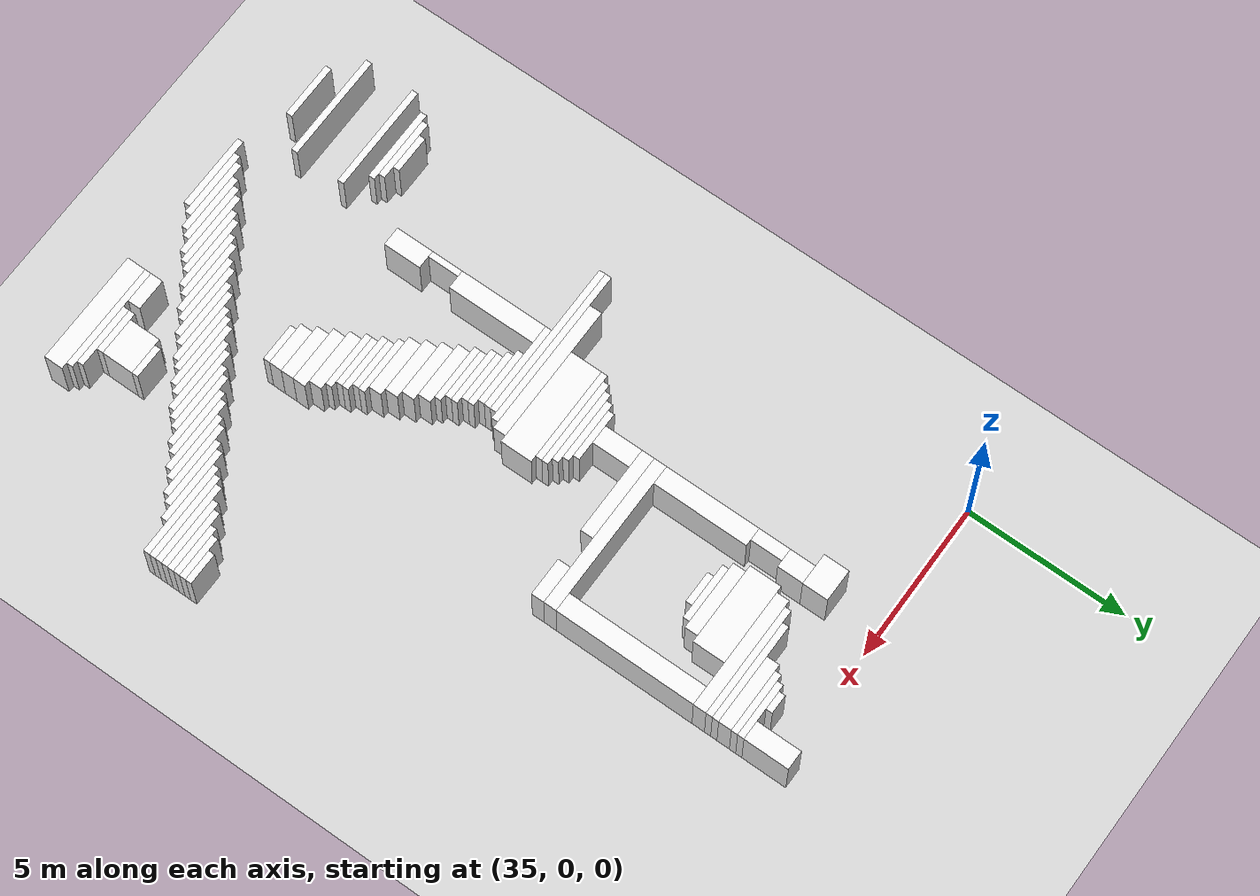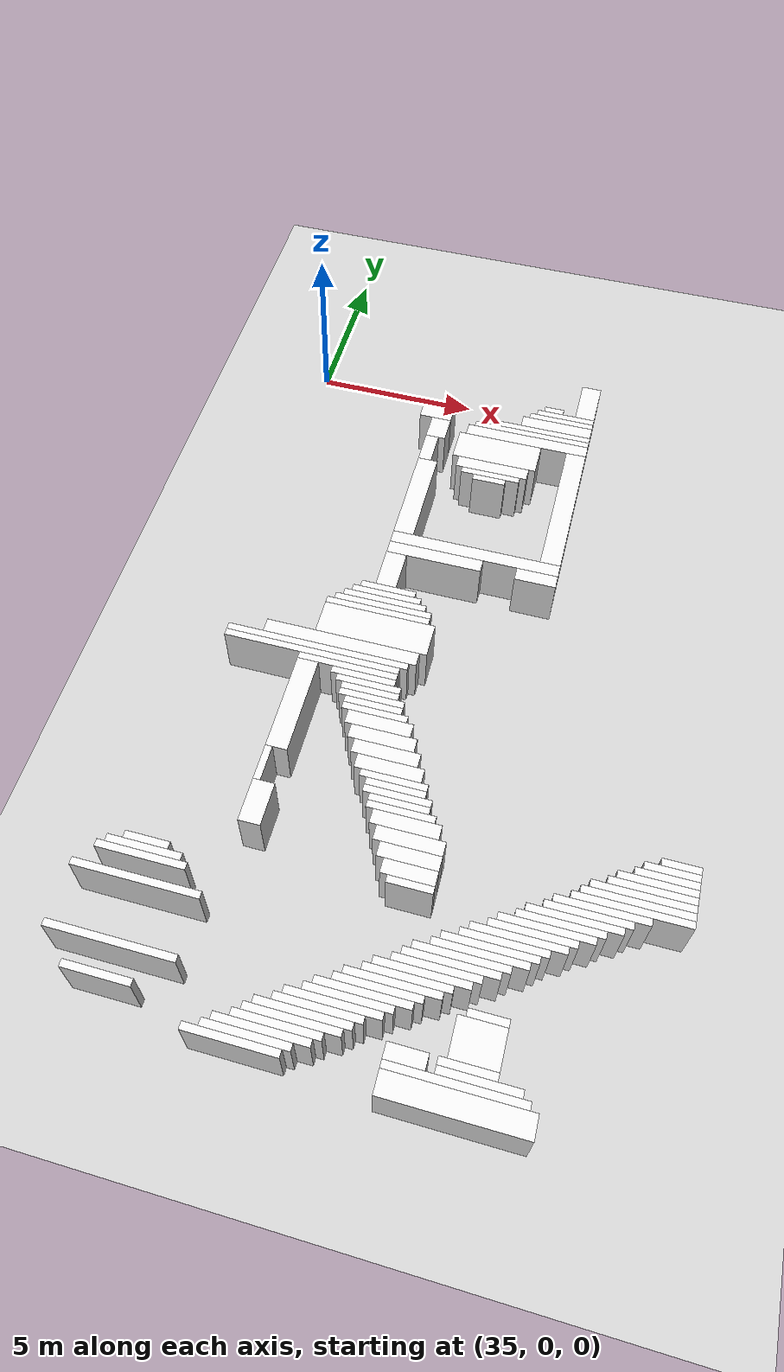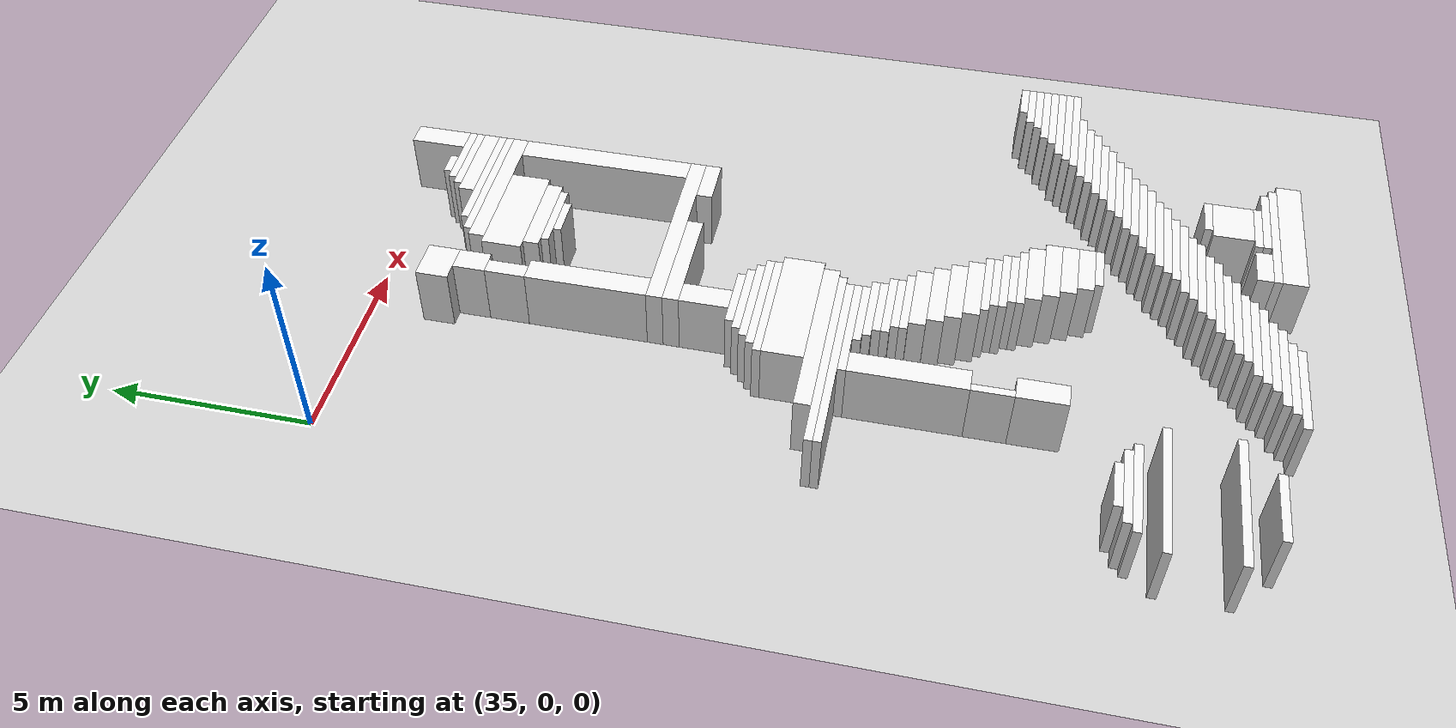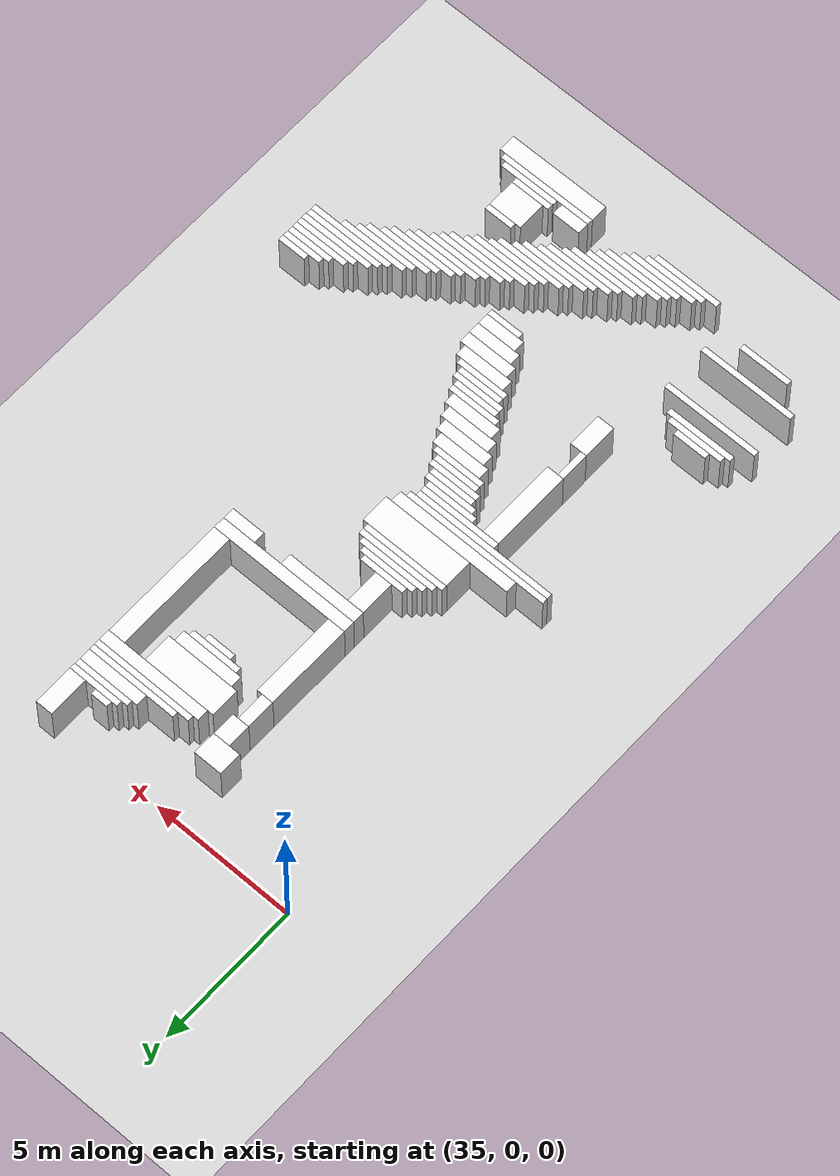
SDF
<sdf version="1.7">
 <world name="default">
  <model name="ground_plane">
   <static>1</static>
   <link name="link">
    <collision name="collision">
     <geometry><plane><normal>0 0 1</normal><size>120 120</size></plane></geometry>
    </collision>
    <visual name="visual">
     <geometry><plane><normal>0 0 1</normal><size>120 120</size></plane></geometry>
     <material>
      <script><uri>file://media/materials/scripts/gazebo.material</uri><name>Gazebo/Grey</name></script>
     </material>
    </visual>
   </link>
  </model>
  <model name="random_complex_03_model">
   <static>1</static>
   <link name="obs_1662">
    <pose>43.9000 -0.3000 0.8000 0 0 0</pose>
    <collision name="obs_1662_col"><geometry><box><size>0.6000 1.4000 1.6000</size></box></geometry></collision>
    <visual name="obs_1662_vis">
     <geometry><box><size>0.6000 1.4000 1.6000</size></box></geometry>
     <material>
      <script><uri>file://media/materials/scripts/gazebo.material</uri><name>Gazebo/White</name></script>
     </material>
    </visual>
   </link>
   <link name="obs_1672">
    <pose>42.9000 -0.9000 0.8000 0 0 0</pose>
    <collision name="obs_1672_col"><geometry><box><size>0.6000 0.2000 1.6000</size></box></geometry></collision>
    <visual name="obs_1672_vis">
     <geometry><box><size>0.6000 0.2000 1.6000</size></box></geometry>
     <material>
      <script><uri>file://media/materials/scripts/gazebo.material</uri><name>Gazebo/White</name></script>
     </material>
    </visual>
   </link>
   <link name="obs_1681">
    <pose>43.3000 -1.1000 0.8000 0 0 0</pose>
    <collision name="obs_1681_col"><geometry><box><size>1.8000 0.2000 1.6000</size></box></geometry></collision>
    <visual name="obs_1681_vis">
     <geometry><box><size>1.8000 0.2000 1.6000</size></box></geometry>
     <material>
      <script><uri>file://media/materials/scripts/gazebo.material</uri><name>Gazebo/White</name></script>
     </material>
    </visual>
   </link>
   <link name="obs_1692">
    <pose>43.2000 -1.3000 0.8000 0 0 0</pose>
    <collision name="obs_1692_col"><geometry><box><size>2.0000 0.2000 1.6000</size></box></geometry></collision>
    <visual name="obs_1692_vis">
     <geometry><box><size>2.0000 0.2000 1.6000</size></box></geometry>
     <material>
      <script><uri>file://media/materials/scripts/gazebo.material</uri><name>Gazebo/White</name></script>
     </material>
    </visual>
   </link>
   <link name="obs_1707">
    <pose>43.1000 -1.6000 0.8000 0 0 0</pose>
    <collision name="obs_1707_col"><geometry><box><size>2.2000 0.4000 1.6000</size></box></geometry></collision>
    <visual name="obs_1707_vis">
     <geometry><box><size>2.2000 0.4000 1.6000</size></box></geometry>
     <material>
      <script><uri>file://media/materials/scripts/gazebo.material</uri><name>Gazebo/White</name></script>
     </material>
    </visual>
   </link>
   <link name="obs_1720">
    <pose>42.6000 -1.9000 0.8000 0 0 0</pose>
    <collision name="obs_1720_col"><geometry><box><size>3.2000 0.2000 1.6000</size></box></geometry></collision>
    <visual name="obs_1720_vis">
     <geometry><box><size>3.2000 0.2000 1.6000</size></box></geometry>
     <material>
      <script><uri>file://media/materials/scripts/gazebo.material</uri><name>Gazebo/White</name></script>
     </material>
    </visual>
   </link>
   <link name="obs_1721">
    <pose>39.3000 -1.8000 0.8000 0 0 0</pose>
    <collision name="obs_1721_col"><geometry><box><size>1.0000 0.8000 1.6000</size></box></geometry></collision>
    <visual name="obs_1721_vis">
     <geometry><box><size>1.0000 0.8000 1.6000</size></box></geometry>
     <material>
      <script><uri>file://media/materials/scripts/gazebo.material</uri><name>Gazebo/White</name></script>
     </material>
    </visual>
   </link>
   <link name="obs_1730">
    <pose>42.4000 -2.1000 0.8000 0 0 0</pose>
    <collision name="obs_1730_col"><geometry><box><size>3.6000 0.2000 1.6000</size></box></geometry></collision>
    <visual name="obs_1730_vis">
     <geometry><box><size>3.6000 0.2000 1.6000</size></box></geometry>
     <material>
      <script><uri>file://media/materials/scripts/gazebo.material</uri><name>Gazebo/White</name></script>
     </material>
    </visual>
   </link>
   <link name="obs_1742">
    <pose>42.3000 -2.4000 0.8000 0 0 0</pose>
    <collision name="obs_1742_col"><geometry><box><size>3.8000 0.4000 1.6000</size></box></geometry></collision>
    <visual name="obs_1742_vis">
     <geometry><box><size>3.8000 0.4000 1.6000</size></box></geometry>
     <material>
      <script><uri>file://media/materials/scripts/gazebo.material</uri><name>Gazebo/White</name></script>
     </material>
    </visual>
   </link>
   <link name="obs_1756">
    <pose>39.5000 -2.6000 0.8000 0 0 0</pose>
    <collision name="obs_1756_col"><geometry><box><size>0.6000 0.8000 1.6000</size></box></geometry></collision>
    <visual name="obs_1756_vis">
     <geometry><box><size>0.6000 0.8000 1.6000</size></box></geometry>
     <material>
      <script><uri>file://media/materials/scripts/gazebo.material</uri><name>Gazebo/White</name></script>
     </material>
    </visual>
   </link>
   <link name="obs_1774">
    <pose>41.5000 -3.1000 0.8000 0 0 0</pose>
    <collision name="obs_1774_col"><geometry><box><size>2.6000 1.0000 1.6000</size></box></geometry></collision>
    <visual name="obs_1774_vis">
     <geometry><box><size>2.6000 1.0000 1.6000</size></box></geometry>
     <material>
      <script><uri>file://media/materials/scripts/gazebo.material</uri><name>Gazebo/White</name></script>
     </material>
    </visual>
   </link>
   <link name="obs_1780">
    <pose>39.4000 -3.5000 0.8000 0 0 0</pose>
    <collision name="obs_1780_col"><geometry><box><size>0.4000 1.0000 1.6000</size></box></geometry></collision>
    <visual name="obs_1780_vis">
     <geometry><box><size>0.4000 1.0000 1.6000</size></box></geometry>
     <material>
      <script><uri>file://media/materials/scripts/gazebo.material</uri><name>Gazebo/White</name></script>
     </material>
    </visual>
   </link>
   <link name="obs_1781">
    <pose>41.5000 -3.8000 0.8000 0 0 0</pose>
    <collision name="obs_1781_col"><geometry><box><size>2.2000 0.4000 1.6000</size></box></geometry></collision>
    <visual name="obs_1781_vis">
     <geometry><box><size>2.2000 0.4000 1.6000</size></box></geometry>
     <material>
      <script><uri>file://media/materials/scripts/gazebo.material</uri><name>Gazebo/White</name></script>
     </material>
    </visual>
   </link>
   <link name="obs_1787">
    <pose>41.5000 -4.1000 0.8000 0 0 0</pose>
    <collision name="obs_1787_col"><geometry><box><size>1.8000 0.2000 1.6000</size></box></geometry></collision>
    <visual name="obs_1787_vis">
     <geometry><box><size>1.8000 0.2000 1.6000</size></box></geometry>
     <material>
      <script><uri>file://media/materials/scripts/gazebo.material</uri><name>Gazebo/White</name></script>
     </material>
    </visual>
   </link>
   <link name="obs_1790">
    <pose>41.5000 -4.3000 0.8000 0 0 0</pose>
    <collision name="obs_1790_col"><geometry><box><size>1.0000 0.2000 1.6000</size></box></geometry></collision>
    <visual name="obs_1790_vis">
     <geometry><box><size>1.0000 0.2000 1.6000</size></box></geometry>
     <material>
      <script><uri>file://media/materials/scripts/gazebo.material</uri><name>Gazebo/White</name></script>
     </material>
    </visual>
   </link>
   <link name="obs_1848">
    <pose>43.9000 -4.8000 0.8000 0 0 0</pose>
    <collision name="obs_1848_col"><geometry><box><size>0.6000 4.4000 1.6000</size></box></geometry></collision>
    <visual name="obs_1848_vis">
     <geometry><box><size>0.6000 4.4000 1.6000</size></box></geometry>
     <material>
      <script><uri>file://media/materials/scripts/gazebo.material</uri><name>Gazebo/White</name></script>
     </material>
    </visual>
   </link>
   <link name="obs_1849">
    <pose>39.5000 -5.5000 0.8000 0 0 0</pose>
    <collision name="obs_1849_col"><geometry><box><size>0.6000 3.0000 1.6000</size></box></geometry></collision>
    <visual name="obs_1849_vis">
     <geometry><box><size>0.6000 3.0000 1.6000</size></box></geometry>
     <material>
      <script><uri>file://media/materials/scripts/gazebo.material</uri><name>Gazebo/White</name></script>
     </material>
    </visual>
   </link>
   <link name="obs_1866">
    <pose>41.7000 -7.2000 0.8000 0 0 0</pose>
    <collision name="obs_1866_col"><geometry><box><size>5.0000 0.4000 1.6000</size></box></geometry></collision>
    <visual name="obs_1866_vis">
     <geometry><box><size>5.0000 0.4000 1.6000</size></box></geometry>
     <material>
      <script><uri>file://media/materials/scripts/gazebo.material</uri><name>Gazebo/White</name></script>
     </material>
    </visual>
   </link>
   <link name="obs_1878">
    <pose>40.6000 -7.6000 0.8000 0 0 0</pose>
    <collision name="obs_1878_col"><geometry><box><size>2.8000 0.4000 1.6000</size></box></geometry></collision>
    <visual name="obs_1878_vis">
     <geometry><box><size>2.8000 0.4000 1.6000</size></box></geometry>
     <material>
      <script><uri>file://media/materials/scripts/gazebo.material</uri><name>Gazebo/White</name></script>
     </material>
    </visual>
   </link>
   <link name="obs_1879">
    <pose>43.6000 -7.6000 0.8000 0 0 0</pose>
    <collision name="obs_1879_col"><geometry><box><size>1.2000 0.4000 1.6000</size></box></geometry></collision>
    <visual name="obs_1879_vis">
     <geometry><box><size>1.2000 0.4000 1.6000</size></box></geometry>
     <material>
      <script><uri>file://media/materials/scripts/gazebo.material</uri><name>Gazebo/White</name></script>
     </material>
    </visual>
   </link>
   <link name="obs_1913">
    <pose>39.5000 -8.4000 0.8000 0 0 0</pose>
    <collision name="obs_1913_col"><geometry><box><size>0.6000 1.2000 1.6000</size></box></geometry></collision>
    <visual name="obs_1913_vis">
     <geometry><box><size>0.6000 1.2000 1.6000</size></box></geometry>
     <material>
      <script><uri>file://media/materials/scripts/gazebo.material</uri><name>Gazebo/White</name></script>
     </material>
    </visual>
   </link>
   <link name="obs_1930">
    <pose>39.6000 -9.1000 0.8000 0 0 0</pose>
    <collision name="obs_1930_col"><geometry><box><size>1.6000 0.2000 1.6000</size></box></geometry></collision>
    <visual name="obs_1930_vis">
     <geometry><box><size>1.6000 0.2000 1.6000</size></box></geometry>
     <material>
      <script><uri>file://media/materials/scripts/gazebo.material</uri><name>Gazebo/White</name></script>
     </material>
    </visual>
   </link>
   <link name="obs_1936">
    <pose>39.6000 -9.3000 0.8000 0 0 0</pose>
    <collision name="obs_1936_col"><geometry><box><size>2.0000 0.2000 1.6000</size></box></geometry></collision>
    <visual name="obs_1936_vis">
     <geometry><box><size>2.0000 0.2000 1.6000</size></box></geometry>
     <material>
      <script><uri>file://media/materials/scripts/gazebo.material</uri><name>Gazebo/White</name></script>
     </material>
    </visual>
   </link>
   <link name="obs_1945">
    <pose>39.6000 -9.5000 0.8000 0 0 0</pose>
    <collision name="obs_1945_col"><geometry><box><size>2.4000 0.2000 1.6000</size></box></geometry></collision>
    <visual name="obs_1945_vis">
     <geometry><box><size>2.4000 0.2000 1.6000</size></box></geometry>
     <material>
      <script><uri>file://media/materials/scripts/gazebo.material</uri><name>Gazebo/White</name></script>
     </material>
    </visual>
   </link>
   <link name="obs_1952">
    <pose>39.6000 -9.7000 0.8000 0 0 0</pose>
    <collision name="obs_1952_col"><geometry><box><size>2.8000 0.2000 1.6000</size></box></geometry></collision>
    <visual name="obs_1952_vis">
     <geometry><box><size>2.8000 0.2000 1.6000</size></box></geometry>
     <material>
      <script><uri>file://media/materials/scripts/gazebo.material</uri><name>Gazebo/White</name></script>
     </material>
    </visual>
   </link>
   <link name="obs_1960">
    <pose>39.5000 -9.9000 0.8000 0 0 0</pose>
    <collision name="obs_1960_col"><geometry><box><size>3.0000 0.2000 1.6000</size></box></geometry></collision>
    <visual name="obs_1960_vis">
     <geometry><box><size>3.0000 0.2000 1.6000</size></box></geometry>
     <material>
      <script><uri>file://media/materials/scripts/gazebo.material</uri><name>Gazebo/White</name></script>
     </material>
    </visual>
   </link>
   <link name="obs_1979">
    <pose>39.6000 -10.5000 0.8000 0 0 0</pose>
    <collision name="obs_1979_col"><geometry><box><size>3.2000 1.0000 1.6000</size></box></geometry></collision>
    <visual name="obs_1979_vis">
     <geometry><box><size>3.2000 1.0000 1.6000</size></box></geometry>
     <material>
      <script><uri>file://media/materials/scripts/gazebo.material</uri><name>Gazebo/White</name></script>
     </material>
    </visual>
   </link>
   <link name="obs_1986">
    <pose>38.8000 -11.2000 0.8000 0 0 0</pose>
    <collision name="obs_1986_col"><geometry><box><size>4.4000 0.4000 1.6000</size></box></geometry></collision>
    <visual name="obs_1986_vis">
     <geometry><box><size>4.4000 0.4000 1.6000</size></box></geometry>
     <material>
      <script><uri>file://media/materials/scripts/gazebo.material</uri><name>Gazebo/White</name></script>
     </material>
    </visual>
   </link>
   <link name="obs_1989">
    <pose>38.2000 -11.5000 0.8000 0 0 0</pose>
    <collision name="obs_1989_col"><geometry><box><size>5.2000 0.2000 1.6000</size></box></geometry></collision>
    <visual name="obs_1989_vis">
     <geometry><box><size>5.2000 0.2000 1.6000</size></box></geometry>
     <material>
      <script><uri>file://media/materials/scripts/gazebo.material</uri><name>Gazebo/White</name></script>
     </material>
    </visual>
   </link>
   <link name="obs_1996">
    <pose>38.1000 -11.7000 0.8000 0 0 0</pose>
    <collision name="obs_1996_col"><geometry><box><size>5.0000 0.2000 1.6000</size></box></geometry></collision>
    <visual name="obs_1996_vis">
     <geometry><box><size>5.0000 0.2000 1.6000</size></box></geometry>
     <material>
      <script><uri>file://media/materials/scripts/gazebo.material</uri><name>Gazebo/White</name></script>
     </material>
    </visual>
   </link>
   <link name="obs_2004">
    <pose>39.2000 -11.9000 0.8000 0 0 0</pose>
    <collision name="obs_2004_col"><geometry><box><size>2.8000 0.2000 1.6000</size></box></geometry></collision>
    <visual name="obs_2004_vis">
     <geometry><box><size>2.8000 0.2000 1.6000</size></box></geometry>
     <material>
      <script><uri>file://media/materials/scripts/gazebo.material</uri><name>Gazebo/White</name></script>
     </material>
    </visual>
   </link>
   <link name="obs_2015">
    <pose>39.7000 -12.1000 0.8000 0 0 0</pose>
    <collision name="obs_2015_col"><geometry><box><size>1.8000 0.2000 1.6000</size></box></geometry></collision>
    <visual name="obs_2015_vis">
     <geometry><box><size>1.8000 0.2000 1.6000</size></box></geometry>
     <material>
      <script><uri>file://media/materials/scripts/gazebo.material</uri><name>Gazebo/White</name></script>
     </material>
    </visual>
   </link>
   <link name="obs_2024">
    <pose>39.9000 -12.3000 0.8000 0 0 0</pose>
    <collision name="obs_2024_col"><geometry><box><size>1.8000 0.2000 1.6000</size></box></geometry></collision>
    <visual name="obs_2024_vis">
     <geometry><box><size>1.8000 0.2000 1.6000</size></box></geometry>
     <material>
      <script><uri>file://media/materials/scripts/gazebo.material</uri><name>Gazebo/White</name></script>
     </material>
    </visual>
   </link>
   <link name="obs_2031">
    <pose>40.0000 -12.5000 0.8000 0 0 0</pose>
    <collision name="obs_2031_col"><geometry><box><size>1.6000 0.2000 1.6000</size></box></geometry></collision>
    <visual name="obs_2031_vis">
     <geometry><box><size>1.6000 0.2000 1.6000</size></box></geometry>
     <material>
      <script><uri>file://media/materials/scripts/gazebo.material</uri><name>Gazebo/White</name></script>
     </material>
    </visual>
   </link>
   <link name="obs_2043">
    <pose>40.1000 -12.7000 0.8000 0 0 0</pose>
    <collision name="obs_2043_col"><geometry><box><size>1.8000 0.2000 1.6000</size></box></geometry></collision>
    <visual name="obs_2043_vis">
     <geometry><box><size>1.8000 0.2000 1.6000</size></box></geometry>
     <material>
      <script><uri>file://media/materials/scripts/gazebo.material</uri><name>Gazebo/White</name></script>
     </material>
    </visual>
   </link>
   <link name="obs_2051">
    <pose>40.2000 -12.9000 0.8000 0 0 0</pose>
    <collision name="obs_2051_col"><geometry><box><size>1.6000 0.2000 1.6000</size></box></geometry></collision>
    <visual name="obs_2051_vis">
     <geometry><box><size>1.6000 0.2000 1.6000</size></box></geometry>
     <material>
      <script><uri>file://media/materials/scripts/gazebo.material</uri><name>Gazebo/White</name></script>
     </material>
    </visual>
   </link>
   <link name="obs_2058">
    <pose>40.3000 -13.1000 0.8000 0 0 0</pose>
    <collision name="obs_2058_col"><geometry><box><size>1.8000 0.2000 1.6000</size></box></geometry></collision>
    <visual name="obs_2058_vis">
     <geometry><box><size>1.8000 0.2000 1.6000</size></box></geometry>
     <material>
      <script><uri>file://media/materials/scripts/gazebo.material</uri><name>Gazebo/White</name></script>
     </material>
    </visual>
   </link>
   <link name="obs_2066">
    <pose>40.5000 -13.4000 0.8000 0 0 0</pose>
    <collision name="obs_2066_col"><geometry><box><size>1.8000 0.4000 1.6000</size></box></geometry></collision>
    <visual name="obs_2066_vis">
     <geometry><box><size>1.8000 0.4000 1.6000</size></box></geometry>
     <material>
      <script><uri>file://media/materials/scripts/gazebo.material</uri><name>Gazebo/White</name></script>
     </material>
    </visual>
   </link>
   <link name="obs_2081">
    <pose>40.7000 -13.8000 0.8000 0 0 0</pose>
    <collision name="obs_2081_col"><geometry><box><size>1.8000 0.4000 1.6000</size></box></geometry></collision>
    <visual name="obs_2081_vis">
     <geometry><box><size>1.8000 0.4000 1.6000</size></box></geometry>
     <material>
      <script><uri>file://media/materials/scripts/gazebo.material</uri><name>Gazebo/White</name></script>
     </material>
    </visual>
   </link>
   <link name="obs_2098">
    <pose>40.9000 -14.2000 0.8000 0 0 0</pose>
    <collision name="obs_2098_col"><geometry><box><size>1.8000 0.4000 1.6000</size></box></geometry></collision>
    <visual name="obs_2098_vis">
     <geometry><box><size>1.8000 0.4000 1.6000</size></box></geometry>
     <material>
      <script><uri>file://media/materials/scripts/gazebo.material</uri><name>Gazebo/White</name></script>
     </material>
    </visual>
   </link>
   <link name="obs_2110">
    <pose>38.1000 -13.4000 0.8000 0 0 0</pose>
    <collision name="obs_2110_col"><geometry><box><size>0.6000 2.8000 1.6000</size></box></geometry></collision>
    <visual name="obs_2110_vis">
     <geometry><box><size>0.6000 2.8000 1.6000</size></box></geometry>
     <material>
      <script><uri>file://media/materials/scripts/gazebo.material</uri><name>Gazebo/White</name></script>
     </material>
    </visual>
   </link>
   <link name="obs_2113">
    <pose>41.1000 -14.6000 0.8000 0 0 0</pose>
    <collision name="obs_2113_col"><geometry><box><size>1.8000 0.4000 1.6000</size></box></geometry></collision>
    <visual name="obs_2113_vis">
     <geometry><box><size>1.8000 0.4000 1.6000</size></box></geometry>
     <material>
      <script><uri>file://media/materials/scripts/gazebo.material</uri><name>Gazebo/White</name></script>
     </material>
    </visual>
   </link>
   <link name="obs_2124">
    <pose>41.3000 -14.9000 0.8000 0 0 0</pose>
    <collision name="obs_2124_col"><geometry><box><size>1.8000 0.2000 1.6000</size></box></geometry></collision>
    <visual name="obs_2124_vis">
     <geometry><box><size>1.8000 0.2000 1.6000</size></box></geometry>
     <material>
      <script><uri>file://media/materials/scripts/gazebo.material</uri><name>Gazebo/White</name></script>
     </material>
    </visual>
   </link>
   <link name="obs_2133">
    <pose>41.4000 -15.1000 0.8000 0 0 0</pose>
    <collision name="obs_2133_col"><geometry><box><size>1.6000 0.2000 1.6000</size></box></geometry></collision>
    <visual name="obs_2133_vis">
     <geometry><box><size>1.6000 0.2000 1.6000</size></box></geometry>
     <material>
      <script><uri>file://media/materials/scripts/gazebo.material</uri><name>Gazebo/White</name></script>
     </material>
    </visual>
   </link>
   <link name="obs_2141">
    <pose>41.5000 -15.3000 0.8000 0 0 0</pose>
    <collision name="obs_2141_col"><geometry><box><size>1.8000 0.2000 1.6000</size></box></geometry></collision>
    <visual name="obs_2141_vis">
     <geometry><box><size>1.8000 0.2000 1.6000</size></box></geometry>
     <material>
      <script><uri>file://media/materials/scripts/gazebo.material</uri><name>Gazebo/White</name></script>
     </material>
    </visual>
   </link>
   <link name="obs_2142">
    <pose>48.7000 -15.3000 0.8000 0 0 0</pose>
    <collision name="obs_2142_col"><geometry><box><size>1.0000 0.2000 1.6000</size></box></geometry></collision>
    <visual name="obs_2142_vis">
     <geometry><box><size>1.0000 0.2000 1.6000</size></box></geometry>
     <material>
      <script><uri>file://media/materials/scripts/gazebo.material</uri><name>Gazebo/White</name></script>
     </material>
    </visual>
   </link>
   <link name="obs_2152">
    <pose>41.6000 -15.5000 0.8000 0 0 0</pose>
    <collision name="obs_2152_col"><geometry><box><size>1.6000 0.2000 1.6000</size></box></geometry></collision>
    <visual name="obs_2152_vis">
     <geometry><box><size>1.6000 0.2000 1.6000</size></box></geometry>
     <material>
      <script><uri>file://media/materials/scripts/gazebo.material</uri><name>Gazebo/White</name></script>
     </material>
    </visual>
   </link>
   <link name="obs_2153">
    <pose>48.5000 -15.5000 0.8000 0 0 0</pose>
    <collision name="obs_2153_col"><geometry><box><size>1.4000 0.2000 1.6000</size></box></geometry></collision>
    <visual name="obs_2153_vis">
     <geometry><box><size>1.4000 0.2000 1.6000</size></box></geometry>
     <material>
      <script><uri>file://media/materials/scripts/gazebo.material</uri><name>Gazebo/White</name></script>
     </material>
    </visual>
   </link>
   <link name="obs_2155">
    <pose>37.9000 -15.3000 0.8000 0 0 0</pose>
    <collision name="obs_2155_col"><geometry><box><size>0.2000 1.0000 1.6000</size></box></geometry></collision>
    <visual name="obs_2155_vis">
     <geometry><box><size>0.2000 1.0000 1.6000</size></box></geometry>
     <material>
      <script><uri>file://media/materials/scripts/gazebo.material</uri><name>Gazebo/White</name></script>
     </material>
    </visual>
   </link>
   <link name="obs_2162">
    <pose>41.7000 -15.7000 0.8000 0 0 0</pose>
    <collision name="obs_2162_col"><geometry><box><size>1.8000 0.2000 1.6000</size></box></geometry></collision>
    <visual name="obs_2162_vis">
     <geometry><box><size>1.8000 0.2000 1.6000</size></box></geometry>
     <material>
      <script><uri>file://media/materials/scripts/gazebo.material</uri><name>Gazebo/White</name></script>
     </material>
    </visual>
   </link>
   <link name="obs_2163">
    <pose>48.4000 -15.7000 0.8000 0 0 0</pose>
    <collision name="obs_2163_col"><geometry><box><size>1.6000 0.2000 1.6000</size></box></geometry></collision>
    <visual name="obs_2163_vis">
     <geometry><box><size>1.6000 0.2000 1.6000</size></box></geometry>
     <material>
      <script><uri>file://media/materials/scripts/gazebo.material</uri><name>Gazebo/White</name></script>
     </material>
    </visual>
   </link>
   <link name="obs_2172">
    <pose>48.2000 -15.9000 0.8000 0 0 0</pose>
    <collision name="obs_2172_col"><geometry><box><size>2.0000 0.2000 1.6000</size></box></geometry></collision>
    <visual name="obs_2172_vis">
     <geometry><box><size>2.0000 0.2000 1.6000</size></box></geometry>
     <material>
      <script><uri>file://media/materials/scripts/gazebo.material</uri><name>Gazebo/White</name></script>
     </material>
    </visual>
   </link>
   <link name="obs_2175">
    <pose>41.9000 -16.0000 0.8000 0 0 0</pose>
    <collision name="obs_2175_col"><geometry><box><size>1.8000 0.4000 1.6000</size></box></geometry></collision>
    <visual name="obs_2175_vis">
     <geometry><box><size>1.8000 0.4000 1.6000</size></box></geometry>
     <material>
      <script><uri>file://media/materials/scripts/gazebo.material</uri><name>Gazebo/White</name></script>
     </material>
    </visual>
   </link>
   <link name="obs_2182">
    <pose>48.1000 -16.1000 0.8000 0 0 0</pose>
    <collision name="obs_2182_col"><geometry><box><size>2.2000 0.2000 1.6000</size></box></geometry></collision>
    <visual name="obs_2182_vis">
     <geometry><box><size>2.2000 0.2000 1.6000</size></box></geometry>
     <material>
      <script><uri>file://media/materials/scripts/gazebo.material</uri><name>Gazebo/White</name></script>
     </material>
    </visual>
   </link>
   <link name="obs_2193">
    <pose>47.9000 -16.3000 0.8000 0 0 0</pose>
    <collision name="obs_2193_col"><geometry><box><size>2.6000 0.2000 1.6000</size></box></geometry></collision>
    <visual name="obs_2193_vis">
     <geometry><box><size>2.6000 0.2000 1.6000</size></box></geometry>
     <material>
      <script><uri>file://media/materials/scripts/gazebo.material</uri><name>Gazebo/White</name></script>
     </material>
    </visual>
   </link>
   <link name="obs_2194">
    <pose>42.1000 -16.4000 0.8000 0 0 0</pose>
    <collision name="obs_2194_col"><geometry><box><size>1.8000 0.4000 1.6000</size></box></geometry></collision>
    <visual name="obs_2194_vis">
     <geometry><box><size>1.8000 0.4000 1.6000</size></box></geometry>
     <material>
      <script><uri>file://media/materials/scripts/gazebo.material</uri><name>Gazebo/White</name></script>
     </material>
    </visual>
   </link>
   <link name="obs_2203">
    <pose>47.8000 -16.5000 0.8000 0 0 0</pose>
    <collision name="obs_2203_col"><geometry><box><size>2.8000 0.2000 1.6000</size></box></geometry></collision>
    <visual name="obs_2203_vis">
     <geometry><box><size>2.8000 0.2000 1.6000</size></box></geometry>
     <material>
      <script><uri>file://media/materials/scripts/gazebo.material</uri><name>Gazebo/White</name></script>
     </material>
    </visual>
   </link>
   <link name="obs_2211">
    <pose>47.7000 -16.7000 0.8000 0 0 0</pose>
    <collision name="obs_2211_col"><geometry><box><size>3.0000 0.2000 1.6000</size></box></geometry></collision>
    <visual name="obs_2211_vis">
     <geometry><box><size>3.0000 0.2000 1.6000</size></box></geometry>
     <material>
      <script><uri>file://media/materials/scripts/gazebo.material</uri><name>Gazebo/White</name></script>
     </material>
    </visual>
   </link>
   <link name="obs_2213">
    <pose>38.1000 -16.4000 0.8000 0 0 0</pose>
    <collision name="obs_2213_col"><geometry><box><size>0.6000 1.2000 1.6000</size></box></geometry></collision>
    <visual name="obs_2213_vis">
     <geometry><box><size>0.6000 1.2000 1.6000</size></box></geometry>
     <material>
      <script><uri>file://media/materials/scripts/gazebo.material</uri><name>Gazebo/White</name></script>
     </material>
    </visual>
   </link>
   <link name="obs_2217">
    <pose>42.2000 -16.8000 0.8000 0 0 0</pose>
    <collision name="obs_2217_col"><geometry><box><size>1.6000 0.4000 1.6000</size></box></geometry></collision>
    <visual name="obs_2217_vis">
     <geometry><box><size>1.6000 0.4000 1.6000</size></box></geometry>
     <material>
      <script><uri>file://media/materials/scripts/gazebo.material</uri><name>Gazebo/White</name></script>
     </material>
    </visual>
   </link>
   <link name="obs_2223">
    <pose>47.0000 -16.9000 0.8000 0 0 0</pose>
    <collision name="obs_2223_col"><geometry><box><size>2.4000 0.2000 1.6000</size></box></geometry></collision>
    <visual name="obs_2223_vis">
     <geometry><box><size>2.4000 0.2000 1.6000</size></box></geometry>
     <material>
      <script><uri>file://media/materials/scripts/gazebo.material</uri><name>Gazebo/White</name></script>
     </material>
    </visual>
   </link>
   <link name="obs_2232">
    <pose>46.7000 -17.1000 0.8000 0 0 0</pose>
    <collision name="obs_2232_col"><geometry><box><size>2.2000 0.2000 1.6000</size></box></geometry></collision>
    <visual name="obs_2232_vis">
     <geometry><box><size>2.2000 0.2000 1.6000</size></box></geometry>
     <material>
      <script><uri>file://media/materials/scripts/gazebo.material</uri><name>Gazebo/White</name></script>
     </material>
    </visual>
   </link>
   <link name="obs_2235">
    <pose>42.3000 -17.2000 0.8000 0 0 0</pose>
    <collision name="obs_2235_col"><geometry><box><size>1.4000 0.4000 1.6000</size></box></geometry></collision>
    <visual name="obs_2235_vis">
     <geometry><box><size>1.4000 0.4000 1.6000</size></box></geometry>
     <material>
      <script><uri>file://media/materials/scripts/gazebo.material</uri><name>Gazebo/White</name></script>
     </material>
    </visual>
   </link>
   <link name="obs_2242">
    <pose>46.4000 -17.3000 0.8000 0 0 0</pose>
    <collision name="obs_2242_col"><geometry><box><size>2.4000 0.2000 1.6000</size></box></geometry></collision>
    <visual name="obs_2242_vis">
     <geometry><box><size>2.4000 0.2000 1.6000</size></box></geometry>
     <material>
      <script><uri>file://media/materials/scripts/gazebo.material</uri><name>Gazebo/White</name></script>
     </material>
    </visual>
   </link>
   <link name="obs_2251">
    <pose>42.4000 -17.5000 0.8000 0 0 0</pose>
    <collision name="obs_2251_col"><geometry><box><size>1.2000 0.2000 1.6000</size></box></geometry></collision>
    <visual name="obs_2251_vis">
     <geometry><box><size>1.2000 0.2000 1.6000</size></box></geometry>
     <material>
      <script><uri>file://media/materials/scripts/gazebo.material</uri><name>Gazebo/White</name></script>
     </material>
    </visual>
   </link>
   <link name="obs_2252">
    <pose>46.1000 -17.5000 0.8000 0 0 0</pose>
    <collision name="obs_2252_col"><geometry><box><size>2.2000 0.2000 1.6000</size></box></geometry></collision>
    <visual name="obs_2252_vis">
     <geometry><box><size>2.2000 0.2000 1.6000</size></box></geometry>
     <material>
      <script><uri>file://media/materials/scripts/gazebo.material</uri><name>Gazebo/White</name></script>
     </material>
    </visual>
   </link>
   <link name="obs_2261">
    <pose>45.8000 -17.7000 0.8000 0 0 0</pose>
    <collision name="obs_2261_col"><geometry><box><size>2.4000 0.2000 1.6000</size></box></geometry></collision>
    <visual name="obs_2261_vis">
     <geometry><box><size>2.4000 0.2000 1.6000</size></box></geometry>
     <material>
      <script><uri>file://media/materials/scripts/gazebo.material</uri><name>Gazebo/White</name></script>
     </material>
    </visual>
   </link>
   <link name="obs_2267">
    <pose>45.5000 -17.9000 0.8000 0 0 0</pose>
    <collision name="obs_2267_col"><geometry><box><size>2.2000 0.2000 1.6000</size></box></geometry></collision>
    <visual name="obs_2267_vis">
     <geometry><box><size>2.2000 0.2000 1.6000</size></box></geometry>
     <material>
      <script><uri>file://media/materials/scripts/gazebo.material</uri><name>Gazebo/White</name></script>
     </material>
    </visual>
   </link>
   <link name="obs_2273">
    <pose>35.8000 -18.1000 0.8000 0 0 0</pose>
    <collision name="obs_2273_col"><geometry><box><size>1.2000 0.2000 1.6000</size></box></geometry></collision>
    <visual name="obs_2273_vis">
     <geometry><box><size>1.2000 0.2000 1.6000</size></box></geometry>
     <material>
      <script><uri>file://media/materials/scripts/gazebo.material</uri><name>Gazebo/White</name></script>
     </material>
    </visual>
   </link>
   <link name="obs_2274">
    <pose>45.2000 -18.1000 0.8000 0 0 0</pose>
    <collision name="obs_2274_col"><geometry><box><size>2.4000 0.2000 1.6000</size></box></geometry></collision>
    <visual name="obs_2274_vis">
     <geometry><box><size>2.4000 0.2000 1.6000</size></box></geometry>
     <material>
      <script><uri>file://media/materials/scripts/gazebo.material</uri><name>Gazebo/White</name></script>
     </material>
    </visual>
   </link>
   <link name="obs_2278">
    <pose>35.8000 -18.3000 0.8000 0 0 0</pose>
    <collision name="obs_2278_col"><geometry><box><size>2.0000 0.2000 1.6000</size></box></geometry></collision>
    <visual name="obs_2278_vis">
     <geometry><box><size>2.0000 0.2000 1.6000</size></box></geometry>
     <material>
      <script><uri>file://media/materials/scripts/gazebo.material</uri><name>Gazebo/White</name></script>
     </material>
    </visual>
   </link>
   <link name="obs_2279">
    <pose>44.9000 -18.3000 0.8000 0 0 0</pose>
    <collision name="obs_2279_col"><geometry><box><size>2.2000 0.2000 1.6000</size></box></geometry></collision>
    <visual name="obs_2279_vis">
     <geometry><box><size>2.2000 0.2000 1.6000</size></box></geometry>
     <material>
      <script><uri>file://media/materials/scripts/gazebo.material</uri><name>Gazebo/White</name></script>
     </material>
    </visual>
   </link>
   <link name="obs_2287">
    <pose>35.8000 -18.5000 0.8000 0 0 0</pose>
    <collision name="obs_2287_col"><geometry><box><size>2.4000 0.2000 1.6000</size></box></geometry></collision>
    <visual name="obs_2287_vis">
     <geometry><box><size>2.4000 0.2000 1.6000</size></box></geometry>
     <material>
      <script><uri>file://media/materials/scripts/gazebo.material</uri><name>Gazebo/White</name></script>
     </material>
    </visual>
   </link>
   <link name="obs_2288">
    <pose>44.6000 -18.5000 0.8000 0 0 0</pose>
    <collision name="obs_2288_col"><geometry><box><size>2.4000 0.2000 1.6000</size></box></geometry></collision>
    <visual name="obs_2288_vis">
     <geometry><box><size>2.4000 0.2000 1.6000</size></box></geometry>
     <material>
      <script><uri>file://media/materials/scripts/gazebo.material</uri><name>Gazebo/White</name></script>
     </material>
    </visual>
   </link>
   <link name="obs_2293">
    <pose>44.4000 -18.7000 0.8000 0 0 0</pose>
    <collision name="obs_2293_col"><geometry><box><size>2.4000 0.2000 1.6000</size></box></geometry></collision>
    <visual name="obs_2293_vis">
     <geometry><box><size>2.4000 0.2000 1.6000</size></box></geometry>
     <material>
      <script><uri>file://media/materials/scripts/gazebo.material</uri><name>Gazebo/White</name></script>
     </material>
    </visual>
   </link>
   <link name="obs_2299">
    <pose>44.0000 -18.9000 0.8000 0 0 0</pose>
    <collision name="obs_2299_col"><geometry><box><size>2.4000 0.2000 1.6000</size></box></geometry></collision>
    <visual name="obs_2299_vis">
     <geometry><box><size>2.4000 0.2000 1.6000</size></box></geometry>
     <material>
      <script><uri>file://media/materials/scripts/gazebo.material</uri><name>Gazebo/White</name></script>
     </material>
    </visual>
   </link>
   <link name="obs_2306">
    <pose>35.9000 -19.1000 0.8000 0 0 0</pose>
    <collision name="obs_2306_col"><geometry><box><size>3.4000 0.2000 1.6000</size></box></geometry></collision>
    <visual name="obs_2306_vis">
     <geometry><box><size>3.4000 0.2000 1.6000</size></box></geometry>
     <material>
      <script><uri>file://media/materials/scripts/gazebo.material</uri><name>Gazebo/White</name></script>
     </material>
    </visual>
   </link>
   <link name="obs_2307">
    <pose>43.8000 -19.1000 0.8000 0 0 0</pose>
    <collision name="obs_2307_col"><geometry><box><size>2.4000 0.2000 1.6000</size></box></geometry></collision>
    <visual name="obs_2307_vis">
     <geometry><box><size>2.4000 0.2000 1.6000</size></box></geometry>
     <material>
      <script><uri>file://media/materials/scripts/gazebo.material</uri><name>Gazebo/White</name></script>
     </material>
    </visual>
   </link>
   <link name="obs_2312">
    <pose>43.5000 -19.3000 0.8000 0 0 0</pose>
    <collision name="obs_2312_col"><geometry><box><size>2.2000 0.2000 1.6000</size></box></geometry></collision>
    <visual name="obs_2312_vis">
     <geometry><box><size>2.2000 0.2000 1.6000</size></box></geometry>
     <material>
      <script><uri>file://media/materials/scripts/gazebo.material</uri><name>Gazebo/White</name></script>
     </material>
    </visual>
   </link>
   <link name="obs_2318">
    <pose>43.2000 -19.5000 0.8000 0 0 0</pose>
    <collision name="obs_2318_col"><geometry><box><size>2.4000 0.2000 1.6000</size></box></geometry></collision>
    <visual name="obs_2318_vis">
     <geometry><box><size>2.4000 0.2000 1.6000</size></box></geometry>
     <material>
      <script><uri>file://media/materials/scripts/gazebo.material</uri><name>Gazebo/White</name></script>
     </material>
    </visual>
   </link>
   <link name="obs_2321">
    <pose>42.9000 -19.7000 0.8000 0 0 0</pose>
    <collision name="obs_2321_col"><geometry><box><size>2.2000 0.2000 1.6000</size></box></geometry></collision>
    <visual name="obs_2321_vis">
     <geometry><box><size>2.2000 0.2000 1.6000</size></box></geometry>
     <material>
      <script><uri>file://media/materials/scripts/gazebo.material</uri><name>Gazebo/White</name></script>
     </material>
    </visual>
   </link>
   <link name="obs_2325">
    <pose>42.6000 -19.9000 0.8000 0 0 0</pose>
    <collision name="obs_2325_col"><geometry><box><size>2.4000 0.2000 1.6000</size></box></geometry></collision>
    <visual name="obs_2325_vis">
     <geometry><box><size>2.4000 0.2000 1.6000</size></box></geometry>
     <material>
      <script><uri>file://media/materials/scripts/gazebo.material</uri><name>Gazebo/White</name></script>
     </material>
    </visual>
   </link>
   <link name="obs_2328">
    <pose>42.3000 -20.1000 0.8000 0 0 0</pose>
    <collision name="obs_2328_col"><geometry><box><size>2.2000 0.2000 1.6000</size></box></geometry></collision>
    <visual name="obs_2328_vis">
     <geometry><box><size>2.2000 0.2000 1.6000</size></box></geometry>
     <material>
      <script><uri>file://media/materials/scripts/gazebo.material</uri><name>Gazebo/White</name></script>
     </material>
    </visual>
   </link>
   <link name="obs_2329">
    <pose>44.9000 -20.1000 0.8000 0 0 0</pose>
    <collision name="obs_2329_col"><geometry><box><size>1.0000 0.2000 1.6000</size></box></geometry></collision>
    <visual name="obs_2329_vis">
     <geometry><box><size>1.0000 0.2000 1.6000</size></box></geometry>
     <material>
      <script><uri>file://media/materials/scripts/gazebo.material</uri><name>Gazebo/White</name></script>
     </material>
    </visual>
   </link>
   <link name="obs_2335">
    <pose>42.0000 -20.3000 0.8000 0 0 0</pose>
    <collision name="obs_2335_col"><geometry><box><size>2.4000 0.2000 1.6000</size></box></geometry></collision>
    <visual name="obs_2335_vis">
     <geometry><box><size>2.4000 0.2000 1.6000</size></box></geometry>
     <material>
      <script><uri>file://media/materials/scripts/gazebo.material</uri><name>Gazebo/White</name></script>
     </material>
    </visual>
   </link>
   <link name="obs_2340">
    <pose>41.7000 -20.5000 0.8000 0 0 0</pose>
    <collision name="obs_2340_col"><geometry><box><size>2.2000 0.2000 1.6000</size></box></geometry></collision>
    <visual name="obs_2340_vis">
     <geometry><box><size>2.2000 0.2000 1.6000</size></box></geometry>
     <material>
      <script><uri>file://media/materials/scripts/gazebo.material</uri><name>Gazebo/White</name></script>
     </material>
    </visual>
   </link>
   <link name="obs_2346">
    <pose>35.9000 -20.7000 0.8000 0 0 0</pose>
    <collision name="obs_2346_col"><geometry><box><size>3.4000 0.2000 1.6000</size></box></geometry></collision>
    <visual name="obs_2346_vis">
     <geometry><box><size>3.4000 0.2000 1.6000</size></box></geometry>
     <material>
      <script><uri>file://media/materials/scripts/gazebo.material</uri><name>Gazebo/White</name></script>
     </material>
    </visual>
   </link>
   <link name="obs_2347">
    <pose>41.4000 -20.7000 0.8000 0 0 0</pose>
    <collision name="obs_2347_col"><geometry><box><size>2.4000 0.2000 1.6000</size></box></geometry></collision>
    <visual name="obs_2347_vis">
     <geometry><box><size>2.4000 0.2000 1.6000</size></box></geometry>
     <material>
      <script><uri>file://media/materials/scripts/gazebo.material</uri><name>Gazebo/White</name></script>
     </material>
    </visual>
   </link>
   <link name="obs_2352">
    <pose>41.1000 -20.9000 0.8000 0 0 0</pose>
    <collision name="obs_2352_col"><geometry><box><size>2.2000 0.2000 1.6000</size></box></geometry></collision>
    <visual name="obs_2352_vis">
     <geometry><box><size>2.2000 0.2000 1.6000</size></box></geometry>
     <material>
      <script><uri>file://media/materials/scripts/gazebo.material</uri><name>Gazebo/White</name></script>
     </material>
    </visual>
   </link>
   <link name="obs_2353">
    <pose>44.8000 -20.7000 0.8000 0 0 0</pose>
    <collision name="obs_2353_col"><geometry><box><size>1.2000 1.0000 1.6000</size></box></geometry></collision>
    <visual name="obs_2353_vis">
     <geometry><box><size>1.2000 1.0000 1.6000</size></box></geometry>
     <material>
      <script><uri>file://media/materials/scripts/gazebo.material</uri><name>Gazebo/White</name></script>
     </material>
    </visual>
   </link>
   <link name="obs_2357">
    <pose>40.8000 -21.1000 0.8000 0 0 0</pose>
    <collision name="obs_2357_col"><geometry><box><size>2.4000 0.2000 1.6000</size></box></geometry></collision>
    <visual name="obs_2357_vis">
     <geometry><box><size>2.4000 0.2000 1.6000</size></box></geometry>
     <material>
      <script><uri>file://media/materials/scripts/gazebo.material</uri><name>Gazebo/White</name></script>
     </material>
    </visual>
   </link>
   <link name="obs_2362">
    <pose>40.6000 -21.3000 0.8000 0 0 0</pose>
    <collision name="obs_2362_col"><geometry><box><size>2.4000 0.2000 1.6000</size></box></geometry></collision>
    <visual name="obs_2362_vis">
     <geometry><box><size>2.4000 0.2000 1.6000</size></box></geometry>
     <material>
      <script><uri>file://media/materials/scripts/gazebo.material</uri><name>Gazebo/White</name></script>
     </material>
    </visual>
   </link>
   <link name="obs_2363">
    <pose>44.7000 -21.3000 0.8000 0 0 0</pose>
    <collision name="obs_2363_col"><geometry><box><size>1.4000 0.2000 1.6000</size></box></geometry></collision>
    <visual name="obs_2363_vis">
     <geometry><box><size>1.4000 0.2000 1.6000</size></box></geometry>
     <material>
      <script><uri>file://media/materials/scripts/gazebo.material</uri><name>Gazebo/White</name></script>
     </material>
    </visual>
   </link>
   <link name="obs_2364">
    <pose>43.3000 -21.4000 0.8000 0 0 0</pose>
    <collision name="obs_2364_col"><geometry><box><size>1.0000 0.4000 1.6000</size></box></geometry></collision>
    <visual name="obs_2364_vis">
     <geometry><box><size>1.0000 0.4000 1.6000</size></box></geometry>
     <material>
      <script><uri>file://media/materials/scripts/gazebo.material</uri><name>Gazebo/White</name></script>
     </material>
    </visual>
   </link>
   <link name="obs_2366">
    <pose>35.9000 -21.5000 0.8000 0 0 0</pose>
    <collision name="obs_2366_col"><geometry><box><size>1.8000 0.2000 1.6000</size></box></geometry></collision>
    <visual name="obs_2366_vis">
     <geometry><box><size>1.8000 0.2000 1.6000</size></box></geometry>
     <material>
      <script><uri>file://media/materials/scripts/gazebo.material</uri><name>Gazebo/White</name></script>
     </material>
    </visual>
   </link>
   <link name="obs_2367">
    <pose>40.3000 -21.5000 0.8000 0 0 0</pose>
    <collision name="obs_2367_col"><geometry><box><size>2.2000 0.2000 1.6000</size></box></geometry></collision>
    <visual name="obs_2367_vis">
     <geometry><box><size>2.2000 0.2000 1.6000</size></box></geometry>
     <material>
      <script><uri>file://media/materials/scripts/gazebo.material</uri><name>Gazebo/White</name></script>
     </material>
    </visual>
   </link>
   <link name="obs_2368">
    <pose>45.0000 -21.5000 0.8000 0 0 0</pose>
    <collision name="obs_2368_col"><geometry><box><size>2.0000 0.2000 1.6000</size></box></geometry></collision>
    <visual name="obs_2368_vis">
     <geometry><box><size>2.0000 0.2000 1.6000</size></box></geometry>
     <material>
      <script><uri>file://media/materials/scripts/gazebo.material</uri><name>Gazebo/White</name></script>
     </material>
    </visual>
   </link>
   <link name="obs_2373">
    <pose>40.0000 -21.7000 0.8000 0 0 0</pose>
    <collision name="obs_2373_col"><geometry><box><size>2.4000 0.2000 1.6000</size></box></geometry></collision>
    <visual name="obs_2373_vis">
     <geometry><box><size>2.4000 0.2000 1.6000</size></box></geometry>
     <material>
      <script><uri>file://media/materials/scripts/gazebo.material</uri><name>Gazebo/White</name></script>
     </material>
    </visual>
   </link>
   <link name="obs_2374">
    <pose>44.5000 -21.7000 0.8000 0 0 0</pose>
    <collision name="obs_2374_col"><geometry><box><size>3.4000 0.2000 1.6000</size></box></geometry></collision>
    <visual name="obs_2374_vis">
     <geometry><box><size>3.4000 0.2000 1.6000</size></box></geometry>
     <material>
      <script><uri>file://media/materials/scripts/gazebo.material</uri><name>Gazebo/White</name></script>
     </material>
    </visual>
   </link>
   <link name="obs_2379">
    <pose>39.7000 -21.9000 0.8000 0 0 0</pose>
    <collision name="obs_2379_col"><geometry><box><size>2.2000 0.2000 1.6000</size></box></geometry></collision>
    <visual name="obs_2379_vis">
     <geometry><box><size>2.2000 0.2000 1.6000</size></box></geometry>
     <material>
      <script><uri>file://media/materials/scripts/gazebo.material</uri><name>Gazebo/White</name></script>
     </material>
    </visual>
   </link>
   <link name="obs_2386">
    <pose>39.4000 -22.1000 0.8000 0 0 0</pose>
    <collision name="obs_2386_col"><geometry><box><size>2.4000 0.2000 1.6000</size></box></geometry></collision>
    <visual name="obs_2386_vis">
     <geometry><box><size>2.4000 0.2000 1.6000</size></box></geometry>
     <material>
      <script><uri>file://media/materials/scripts/gazebo.material</uri><name>Gazebo/White</name></script>
     </material>
    </visual>
   </link>
   <link name="obs_2387">
    <pose>44.6000 -22.1000 0.8000 0 0 0</pose>
    <collision name="obs_2387_col"><geometry><box><size>3.6000 0.6000 1.6000</size></box></geometry></collision>
    <visual name="obs_2387_vis">
     <geometry><box><size>3.6000 0.6000 1.6000</size></box></geometry>
     <material>
      <script><uri>file://media/materials/scripts/gazebo.material</uri><name>Gazebo/White</name></script>
     </material>
    </visual>
   </link>
  </model>
 </world>
</sdf>
